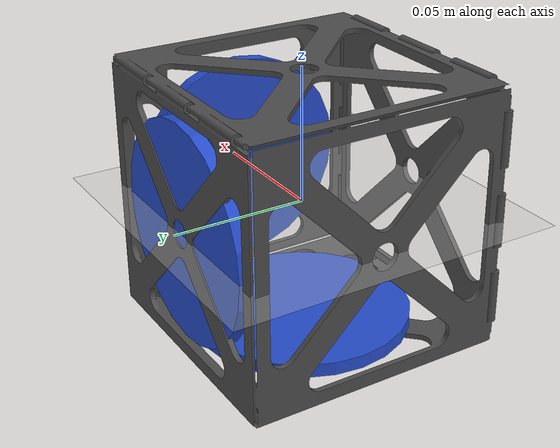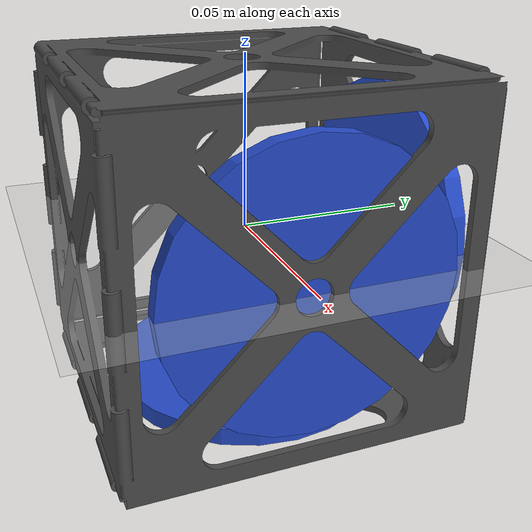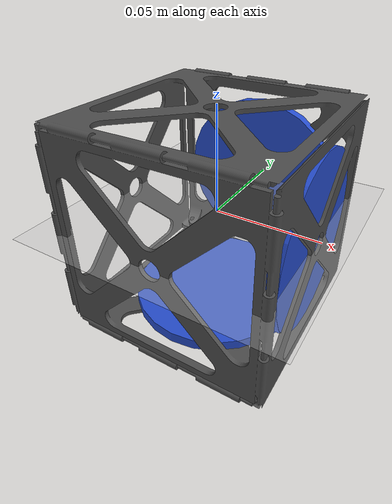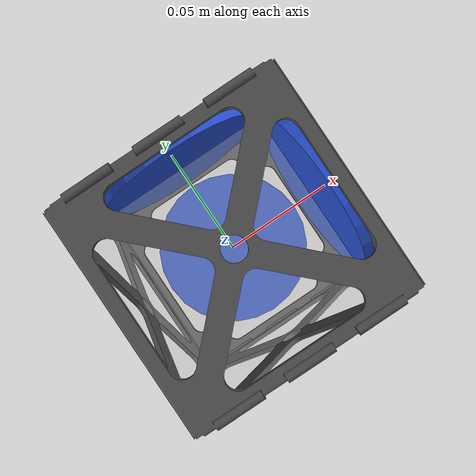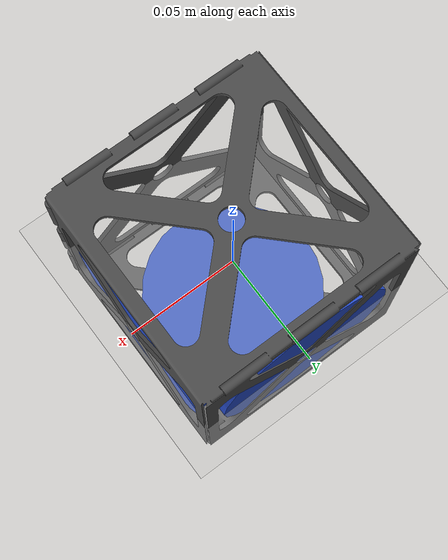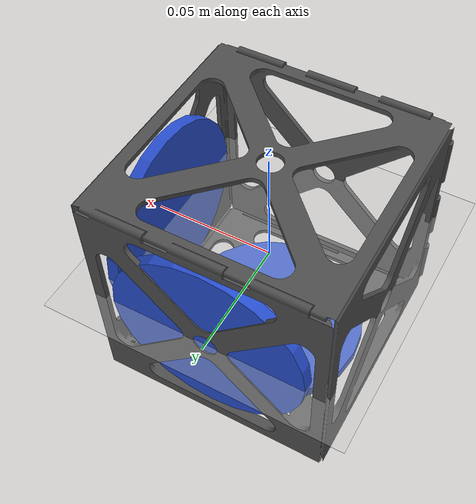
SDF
<?xml version="1.0" ?>
<sdf version="1.5">
  <world name="default">
    <!-- A global light source -->
    <include>
      <uri>model://sun</uri>
    </include>
    <!-- A ground plane -->
    <include>
      <uri>model://ground_plane</uri>
    </include>
    <include>
      <uri>model://nanosat</uri>
    </include>
    <physics type="ode">
    	<gravity> 0 0 -0.00001 </gravity>
    </physics>
  </world>
</sdf>

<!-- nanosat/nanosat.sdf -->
<sdf version='1.5'>
  <model name='nanosat'>
    <link name='base_link'>
      <pose>0 0 0 0 -0 0</pose>
      <inertial>
        <mass>1.33</mass>
        <inertia>
          <ixx>0.0022222158</ixx>
          <ixy>0</ixy>
          <ixz>0</ixz>
          <iyy>0.0022222158</iyy>
          <iyz>0</iyz>
          <izz>0.0022222158</izz>
        </inertia>
      </inertial>
      <self_collide>0</self_collide>
      <kinematic>0</kinematic>
     <visual name='base_link_visual'>
        <pose>0 -0.05 0 0 -0 0</pose>
        <geometry>
          <mesh>
            <scale>0.001 0.001 0.001</scale>
            <uri>model://nanosat/meshes/cubesat.STL</uri>
          </mesh>
        </geometry>
        <material>
          <script>
            <name>Gazebo/DarkGrey</name>
            <uri>__default__</uri>
          </script>
        </material>
      </visual>
      <collision name='base_link_collision'>
        <laser_retro>0</laser_retro>
        <max_contacts>10</max_contacts>
        <pose>0 0 0 0 -0 0</pose>
        <geometry>
          <box>
            <size>0.1 0.1 0.1</size>
          </box>
        </geometry>
        <surface>
          <friction>
            <ode>
              <mu>1</mu>
              <mu2>1</mu2>
              <fdir1>0 0 0</fdir1>
              <slip1>0</slip1>
              <slip2>0</slip2>
            </ode>
          </friction>
          <bounce>
            <restitution_coefficient>0</restitution_coefficient>
            <threshold>1e+06</threshold>
          </bounce>
          <contact>
            <collide_without_contact>0</collide_without_contact>
            <collide_without_contact_bitmask>1</collide_without_contact_bitmask>
            <collide_bitmask>1</collide_bitmask>
            <ode>
              <soft_cfm>0</soft_cfm>
              <soft_erp>0.2</soft_erp>
              <kp>1e+13</kp>
              <kd>1</kd>
              <max_vel>0.01</max_vel>
              <min_depth>0</min_depth>
            </ode>
          </contact>
        </surface>
      </collision>
    </link>

    <!-- IMU -->
    <link name='nanosat/imu_link'>
      <pose>0 0 0 0 -0 0</pose>
      <inertial>
        <pose>0 0 0 0 -0 0</pose>
        <mass>0.015</mass>
        <inertia>
          <ixx>1e-05</ixx>
          <ixy>0</ixy>
          <ixz>0</ixz>
          <iyy>1e-05</iyy>
          <iyz>0</iyz>
          <izz>1e-05</izz>
        </inertia>
      </inertial>
    </link>
    <joint name='nanosat/imu_joint' type='revolute'>
      <child>nanosat/imu_link</child>
      <parent>base_link</parent>
      <axis>
        <xyz>1 0 0</xyz>
        <limit>
          <lower>0</lower>
          <upper>0</upper>
          <effort>0</effort>
          <velocity>0</velocity>
        </limit>
        <dynamics>
          <spring_reference>0</spring_reference>
          <spring_stiffness>0</spring_stiffness>
        </dynamics>
        <use_parent_model_frame>1</use_parent_model_frame>
      </axis>
    </joint>

    <!-- Roll control wheel -->
    <link name='flywheel_0'>
      <pose>-0 0.045 -0 1.5708 -0 0</pose>
      <inertial>
        <pose>0 0 0 0 -0 0</pose>
        <mass>0.04</mass>
        <inertia>
          <ixx>0.0001608333</ixx>
          <ixy>0</ixy>
          <ixz>0</ixz>
          <iyy>0.0001608333</iyy>
          <iyz>0</iyz>
          <izz>0.00032</izz>
        </inertia>
      </inertial>
      <self_collide>0</self_collide>
      <kinematic>0</kinematic>
      <velocity_decay/>
      <gravity>1</gravity>
      <visual name='flywheel_0_visual'>
        <pose>0 0 0 0 -0 0</pose>
        <geometry>
          <cylinder>
            <length>0.005</length>
            <radius>0.04</radius>
          </cylinder>
        </geometry>
        <material>
          <script>
            <name>Gazebo/Blue</name>
            <uri>__default__</uri>
          </script>
          <shader type='pixel'>
            <normal_map>__default__</normal_map>
          </shader>
          <ambient>0 0 1 1</ambient>
          <diffuse>0 0 1 1</diffuse>
          <specular>0.1 0.1 0.1 1</specular>
          <emissive>0 0 0 1</emissive>
        </material>
        <cast_shadows>1</cast_shadows>
        <transparency>0</transparency>
      </visual>
      <collision name='flywheel_0_collision'>
        <laser_retro>0</laser_retro>
        <max_contacts>10</max_contacts>
        <pose>0 0 0 0 -0 0</pose>
        <geometry>
          <cylinder>
            <radius>0.04</radius>
            <length>0.005</length>
          </cylinder>
        </geometry>
        <surface>
          <friction>
            <ode>
              <mu>1</mu>
              <mu2>1</mu2>
              <fdir1>0 0 0</fdir1>
              <slip1>0</slip1>
              <slip2>0</slip2>
            </ode>
          </friction>
          <bounce>
            <restitution_coefficient>0</restitution_coefficient>
            <threshold>1e+06</threshold>
          </bounce>
          <contact>
            <collide_without_contact>0</collide_without_contact>
            <collide_without_contact_bitmask>1</collide_without_contact_bitmask>
            <collide_bitmask>1</collide_bitmask>
            <ode>
              <soft_cfm>0</soft_cfm>
              <soft_erp>0.2</soft_erp>
              <kp>1e+13</kp>
              <kd>1</kd>
              <max_vel>0.01</max_vel>
              <min_depth>0</min_depth>
            </ode>
            <bullet>
              <split_impulse>1</split_impulse>
              <split_impulse_penetration_threshold>-0.01</split_impulse_penetration_threshold>
              <soft_cfm>0</soft_cfm>
              <soft_erp>0.2</soft_erp>
              <kp>1e+13</kp>
              <kd>1</kd>
            </bullet>
          </contact>
        </surface>
      </collision>
    </link>
    <joint name='flywheel_0_joint' type='revolute'>
      <child>flywheel_0</child>
      <parent>base_link</parent>
      <axis>
        <xyz>0 0.5 0</xyz>
        <limit>
          <lower>-1e+16</lower>
          <upper>1e+16</upper>
        </limit>
        <dynamics>
          <spring_reference>0</spring_reference>
          <spring_stiffness>0</spring_stiffness>
        </dynamics>
        <use_parent_model_frame>1</use_parent_model_frame>
      </axis>
    </joint>
    <plugin name='flywheel_0_motor_model' filename='librotors_gazebo_motor_model.so'>
      <robotNamespace>nanosat</robotNamespace>
      <jointName>flywheel_0_joint</jointName>
      <linkName>flywheel_0</linkName>
      <timeConstantUp>0.0125</timeConstantUp>
      <timeConstantDown>0.025</timeConstantDown>
      <maxRotVelocity>838</maxRotVelocity>
      <motorConstant>8.54858e-06</motorConstant>
      <momentConstant>0.016</momentConstant>
      <commandSubTopic>gazebo/command/motor_speed</commandSubTopic>
      <motorNumber>0</motorNumber>
      <rotorDragCoefficient>8.06428e-05</rotorDragCoefficient>
      <rollingMomentCoefficient>1e-06</rollingMomentCoefficient>
      <motorSpeedPubTopic>motor_speed/0</motorSpeedPubTopic>
      <rotorVelocitySlowdownSim>1</rotorVelocitySlowdownSim>
      <reversible>1</reversible>
    </plugin>

    <!-- Pitch control wheel -->
    <link name='flywheel_1'>
      <pose>0.045 -0 0 -3.14151 1.57079 -3.14151</pose>
      <inertial>
        <pose>0 0 0 0 -0 0</pose>
        <mass>0.04</mass>
        <inertia>
          <ixx>0.0001608333</ixx>
          <ixy>0</ixy>
          <ixz>0</ixz>
          <iyy>0.0001608333</iyy>
          <iyz>0</iyz>
          <izz>0.00032</izz>
        </inertia>
      </inertial>
      <self_collide>0</self_collide>
      <kinematic>0</kinematic>
      <velocity_decay/>
      <gravity>1</gravity>
      <visual name="flywheel_1_visual">
        <pose>0 0 0 0 -0 0</pose>
        <geometry>
          <cylinder>
            <length>0.005</length>
            <radius>0.04</radius>
          </cylinder>
        </geometry>
        <material>
          <script>
            <name>Gazebo/Blue</name>
            <uri>__default__</uri>
          </script>
          <shader type='pixel'>
            <normal_map>__default__</normal_map>
          </shader>
          <ambient>0 0 1 1</ambient>
          <diffuse>0 0 1 1</diffuse>
          <specular>0.1 0.1 0.1 1</specular>
          <emissive>0 0 0 1</emissive>
        </material>
        <cast_shadows>1</cast_shadows>
        <transparency>0</transparency>
      </visual>
      <collision name='flywheel_1_collision'>
        <laser_retro>0</laser_retro>
        <max_contacts>10</max_contacts>
        <pose>0 0 0 0 -0 0</pose>
        <geometry>
          <cylinder>
            <radius>0.04</radius>
            <length>0.005</length>
          </cylinder>
        </geometry>
        <surface>
          <friction>
            <ode>
              <mu>1</mu>
              <mu2>1</mu2>
              <fdir1>0 0 0</fdir1>
              <slip1>0</slip1>
              <slip2>0</slip2>
            </ode>
          </friction>
          <bounce>
            <restitution_coefficient>0</restitution_coefficient>
            <threshold>1e+06</threshold>
          </bounce>
          <contact>
            <collide_without_contact>0</collide_without_contact>
            <collide_without_contact_bitmask>1</collide_without_contact_bitmask>
            <collide_bitmask>1</collide_bitmask>
            <ode>
              <soft_cfm>0</soft_cfm>
              <soft_erp>0.2</soft_erp>
              <kp>1e+13</kp>
              <kd>1</kd>
              <max_vel>0.01</max_vel>
              <min_depth>0</min_depth>
            </ode>
            <bullet>
              <split_impulse>1</split_impulse>
              <split_impulse_penetration_threshold>-0.01</split_impulse_penetration_threshold>
              <soft_cfm>0</soft_cfm>
              <soft_erp>0.2</soft_erp>
              <kp>1e+13</kp>
              <kd>1</kd>
            </bullet>
          </contact>
        </surface>
      </collision>
    </link>
    <joint name='flywheel_1_joint' type='revolute'>
      <child>flywheel_1</child>
      <parent>base_link</parent>
      <axis>
        <xyz>0.5 0 0</xyz>
        <limit>
          <lower>-1e+16</lower>
          <upper>1e+16</upper>
        </limit>
        <dynamics>
          <spring_reference>0</spring_reference>
          <spring_stiffness>0</spring_stiffness>
        </dynamics>
        <use_parent_model_frame>1</use_parent_model_frame>
      </axis>
    </joint>
    <plugin name='flywheel_1_motor_model' filename='librotors_gazebo_motor_model.so'>
      <robotNamespace>nanosat</robotNamespace>
      <jointName>flywheel_1_joint</jointName>
      <linkName>flywheel_1</linkName>
      <timeConstantUp>0.0125</timeConstantUp>
      <timeConstantDown>0.025</timeConstantDown>
      <maxRotVelocity>838</maxRotVelocity>
      <motorConstant>8.54858e-06</motorConstant>
      <momentConstant>0.016</momentConstant>
      <commandSubTopic>gazebo/command/motor_speed</commandSubTopic>
      <motorNumber>1</motorNumber>
      <rotorDragCoefficient>8.06428e-05</rotorDragCoefficient>
      <rollingMomentCoefficient>1e-06</rollingMomentCoefficient>
      <motorSpeedPubTopic>motor_speed/1</motorSpeedPubTopic>
      <rotorVelocitySlowdownSim>1</rotorVelocitySlowdownSim>
      <reversible>1</reversible>
    </plugin>

        <!-- Yaw control wheel -->
    <link name='flywheel_2'>
      <pose>0 -0 -0.045 0 -0 0</pose>
      <inertial>
        <pose>0 0 0 0 -0 0</pose>
        <mass>0.04</mass>
        <inertia>
          <ixx>0.0001608333</ixx>
          <ixy>0</ixy>
          <ixz>0</ixz>
          <iyy>0.0001608333</iyy>
          <iyz>0</iyz>
          <izz>0.00032</izz>
        </inertia>
      </inertial>
      <self_collide>0</self_collide>
      <kinematic>0</kinematic>
      <velocity_decay/>
      <gravity>1</gravity>
      <visual name='flywheel_2_visual'>
        <pose>0 0 0 0 -0 0</pose>
        <geometry>
          <cylinder>
            <length>0.005</length>
            <radius>0.04</radius>
          </cylinder>
        </geometry>
        <material>
          <script>
            <name>Gazebo/Blue</name>
            <uri>__default__</uri>
          </script>
          <shader type='pixel'>
            <normal_map>__default__</normal_map>
          </shader>
          <ambient>0 0 1 1</ambient>
          <diffuse>0 0 1 1</diffuse>
          <specular>0.1 0.1 0.1 1</specular>
          <emissive>0 0 0 1</emissive>
        </material>
        <cast_shadows>1</cast_shadows>
        <transparency>0</transparency>
      </visual>
      <collision name='flywheel_2_collision'>
        <laser_retro>0</laser_retro>
        <max_contacts>10</max_contacts>
        <pose>0 0 0 0 -0 0</pose>
        <geometry>
          <cylinder>
            <radius>0.04</radius>
            <length>0.005</length>
          </cylinder>
        </geometry>
        <surface>
          <friction>
            <ode>
              <mu>1</mu>
              <mu2>1</mu2>
              <fdir1>0 0 0</fdir1>
              <slip1>0</slip1>
              <slip2>0</slip2>
            </ode>
          </friction>
          <bounce>
            <restitution_coefficient>0</restitution_coefficient>
            <threshold>1e+06</threshold>
          </bounce>
          <contact>
            <collide_without_contact>0</collide_without_contact>
            <collide_without_contact_bitmask>1</collide_without_contact_bitmask>
            <collide_bitmask>1</collide_bitmask>
            <ode>
              <soft_cfm>0</soft_cfm>
              <soft_erp>0.2</soft_erp>
              <kp>1e+13</kp>
              <kd>1</kd>
              <max_vel>0.01</max_vel>
              <min_depth>0</min_depth>
            </ode>
            <bullet>
              <split_impulse>1</split_impulse>
              <split_impulse_penetration_threshold>-0.01</split_impulse_penetration_threshold>
              <soft_cfm>0</soft_cfm>
              <soft_erp>0.2</soft_erp>
              <kp>1e+13</kp>
              <kd>1</kd>
            </bullet>
          </contact>
        </surface>
      </collision>
    </link>
     <joint name='flywheel_2_joint' type='revolute'>
      <child>flywheel_2</child>
      <parent>base_link</parent>
      <axis>
        <xyz>0 0 0.5</xyz>
        <limit>
          <lower>-1e+16</lower>
          <upper>1e+16</upper>
        </limit>
        <dynamics>
          <spring_reference>0</spring_reference>
          <spring_stiffness>0</spring_stiffness>
        </dynamics>
        <use_parent_model_frame>1</use_parent_model_frame>
      </axis>
    </joint>
    <plugin name='flywheel_2_motor_model' filename='librotors_gazebo_motor_model.so'>
      <robotNamespace>nanosat</robotNamespace>
      <jointName>flywheel_0_joint</jointName>
      <linkName>flywheel_0</linkName>
      <timeConstantUp>0.0125</timeConstantUp>
      <timeConstantDown>0.025</timeConstantDown>
      <maxRotVelocity>838</maxRotVelocity>
      <motorConstant>8.54858e-06</motorConstant>
      <momentConstant>0.016</momentConstant>
      <commandSubTopic>gazebo/command/motor_speed</commandSubTopic>
      <motorNumber>2</motorNumber>
      <rotorDragCoefficient>8.06428e-05</rotorDragCoefficient>
      <rollingMomentCoefficient>1e-06</rollingMomentCoefficient>
      <motorSpeedPubTopic>motor_speed/2</motorSpeedPubTopic>
      <rotorVelocitySlowdownSim>1</rotorVelocitySlowdownSim>
      <reversible>1</reversible>
    </plugin>

    <plugin name='rotors_gazebo_imu_plugin' filename='librotors_gazebo_imu_plugin.so'>
      <robotNamespace>nanosat</robotNamespace>
      <linkName>nanosat/imu_link</linkName>
      <imuTopic>imu</imuTopic>
      <gyroscopeNoiseDensity>0.0003394</gyroscopeNoiseDensity>
      <gyroscopeRandomWalk>3.8785e-05</gyroscopeRandomWalk>
      <gyroscopeBiasCorrelationTime>1000.0</gyroscopeBiasCorrelationTime>
      <gyroscopeTurnOnBiasSigma>0.0087</gyroscopeTurnOnBiasSigma>
      <accelerometerNoiseDensity>0.004</accelerometerNoiseDensity>
      <accelerometerRandomWalk>0.006</accelerometerRandomWalk>
      <accelerometerBiasCorrelationTime>300.0</accelerometerBiasCorrelationTime>
      <accelerometerTurnOnBiasSigma>0.196</accelerometerTurnOnBiasSigma>
    </plugin>
    <plugin name='mavlink_interface' filename='librotors_gazebo_mavlink_interface.so'>
      <robotNamespace>nanosat</robotNamespace>
      <imuSubTopic>imu</imuSubTopic>
      <motorSpeedCommandPubTopic>gazebo/command/motor_speed</motorSpeedCommandPubTopic>
    </plugin>
  </model>
</sdf>
